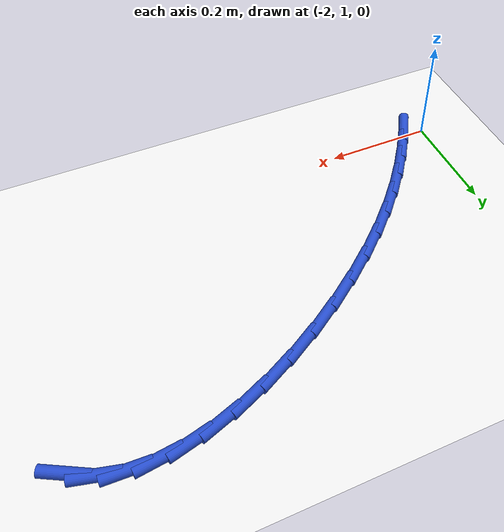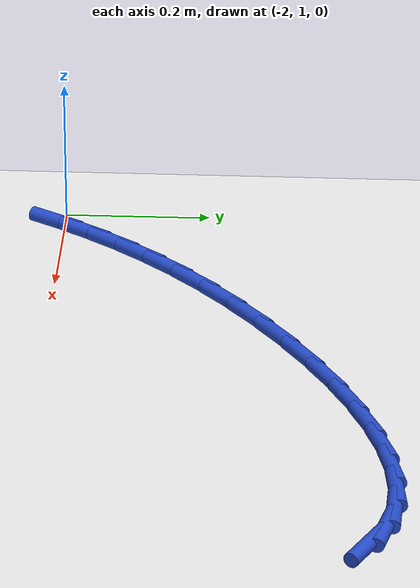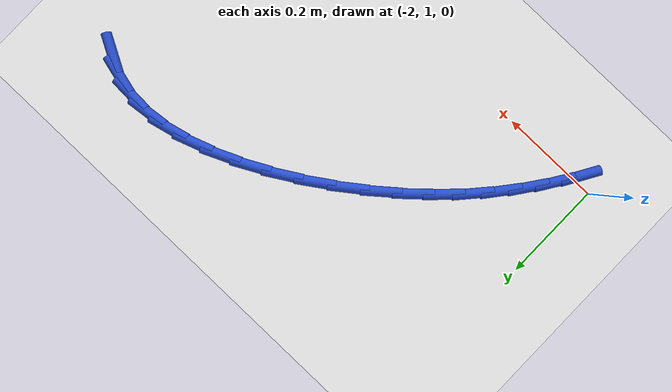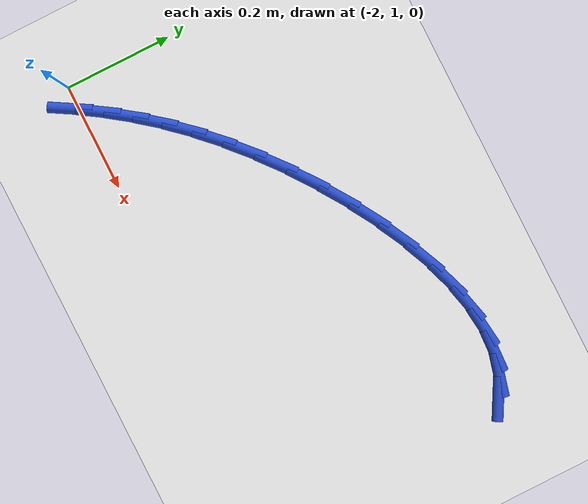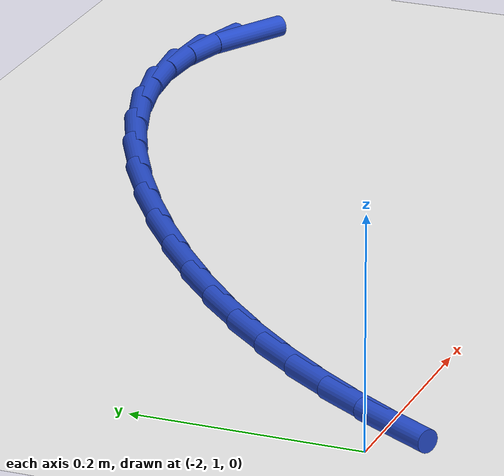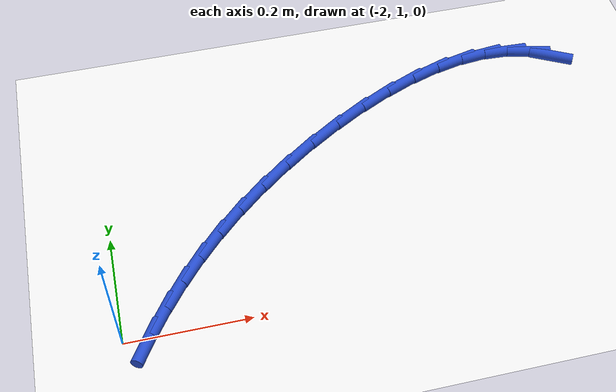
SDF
<sdf version="1.6">
 <world name="default">
  <model name="ground_plane">
   <static>1</static>
   <link name="link">
    <collision name="collision">
     <geometry><plane><normal>0 0 1</normal><size>100 100</size></plane></geometry>
     <surface><friction><ode><mu>100</mu><mu2>50</mu2></ode></friction></surface>
    </collision>
    <visual name="visual">
     <cast_shadows>0</cast_shadows>
     <geometry><plane><normal>0 0 1</normal><size>100 100</size></plane></geometry>
     <material>
      <script><uri>file://media/materials/scripts/gazebo.material</uri><name>Gazebo/WhiteGlow</name></script>
     </material>
    </visual>
   </link>
  </model>
  <model name="line">
   <link name="link_38">
    <pose>-1.1623889469960382 1.4319249500600415 0.01 0 1.57 -0.5040491336817796</pose>
    <collision name="collision">
     <geometry><cylinder><radius>0.01</radius><length>0.08</length></cylinder></geometry>
    </collision>
    <visual name="visual">
     <material>
      <script><name>Gazebo/Blue</name><uri>file://media/materials/scripts/gazebo.material</uri></script>
     </material>
     <geometry><cylinder><radius>0.01</radius><length>0.08</length></cylinder></geometry>
    </visual>
   </link>
   <link name="link_39">
    <pose>-1.199723672049727 1.4525177299784982 0.01 0 1.57 -0.2534060157428631</pose>
    <collision name="collision">
     <geometry><cylinder><radius>0.01</radius><length>0.08</length></cylinder></geometry>
    </collision>
    <visual name="visual">
     <material>
      <script><name>Gazebo/Blue</name><uri>file://media/materials/scripts/gazebo.material</uri></script>
     </material>
     <geometry><cylinder><radius>0.01</radius><length>0.08</length></cylinder></geometry>
    </visual>
   </link>
   <link name="link_40">
    <pose>-1.2420967896434874 1.463491230972106 0.01 0 1.57 -0.047241670514613025</pose>
    <collision name="collision">
     <geometry><cylinder><radius>0.01</radius><length>0.08</length></cylinder></geometry>
    </collision>
    <visual name="visual">
     <material>
      <script><name>Gazebo/Blue</name><uri>file://media/materials/scripts/gazebo.material</uri></script>
     </material>
     <geometry><cylinder><radius>0.01</radius><length>0.08</length></cylinder></geometry>
    </visual>
   </link>
   <link name="link_41">
    <pose>-1.2886680470303864 1.4656929731441437 0.01 0 1.57 0.11411441910101199</pose>
    <collision name="collision">
     <geometry><cylinder><radius>0.01</radius><length>0.08</length></cylinder></geometry>
    </collision>
    <visual name="visual">
     <material>
      <script><name>Gazebo/Blue</name><uri>file://media/materials/scripts/gazebo.material</uri></script>
     </material>
     <geometry><cylinder><radius>0.01</radius><length>0.08</length></cylinder></geometry>
    </visual>
   </link>
   <link name="link_42">
    <pose>-1.3385971914634907 1.4599704765978907 0.01 0 1.57 0.23936329155781605</pose>
    <collision name="collision">
     <geometry><cylinder><radius>0.01</radius><length>0.08</length></cylinder></geometry>
    </collision>
    <visual name="visual">
     <material>
      <script><name>Gazebo/Blue</name><uri>file://media/materials/scripts/gazebo.material</uri></script>
     </material>
     <geometry><cylinder><radius>0.01</radius><length>0.08</length></cylinder></geometry>
    </visual>
   </link>
   <link name="link_43">
    <pose>-1.391043970195867 1.4471712614366257 0.01 0 1.57 0.33807251238435</pose>
    <collision name="collision">
     <geometry><cylinder><radius>0.01</radius><length>0.08</length></cylinder></geometry>
    </collision>
    <visual name="visual">
     <material>
      <script><name>Gazebo/Blue</name><uri>file://media/materials/scripts/gazebo.material</uri></script>
     </material>
     <geometry><cylinder><radius>0.01</radius><length>0.08</length></cylinder></geometry>
    </visual>
   </link>
   <link name="link_44">
    <pose>-1.445168130480584 1.4281428477636284 0.01 0 1.57 0.41796376953160397</pose>
    <collision name="collision">
     <geometry><cylinder><radius>0.01</radius><length>0.08</length></cylinder></geometry>
    </collision>
    <visual name="visual">
     <material>
      <script><name>Gazebo/Blue</name><uri>file://media/materials/scripts/gazebo.material</uri></script>
     </material>
     <geometry><cylinder><radius>0.01</radius><length>0.08</length></cylinder></geometry>
    </visual>
   </link>
   <link name="link_45">
    <pose>-1.5001294195707089 1.4037327556821773 0.01 0 1.57 0.48474719495105406</pose>
    <collision name="collision">
     <geometry><cylinder><radius>0.01</radius><length>0.08</length></cylinder></geometry>
    </collision>
    <visual name="visual">
     <material>
      <script><name>Gazebo/Blue</name><uri>file://media/materials/scripts/gazebo.material</uri></script>
     </material>
     <geometry><cylinder><radius>0.01</radius><length>0.08</length></cylinder></geometry>
    </visual>
   </link>
   <link name="link_46">
    <pose>-1.5550875847193069 1.3747885052955513 0.01 0 1.57 0.5426180068361647</pose>
    <collision name="collision">
     <geometry><cylinder><radius>0.01</radius><length>0.08</length></cylinder></geometry>
    </collision>
    <visual name="visual">
     <material>
      <script><name>Gazebo/Blue</name><uri>file://media/materials/scripts/gazebo.material</uri></script>
     </material>
     <geometry><cylinder><radius>0.01</radius><length>0.08</length></cylinder></geometry>
    </visual>
   </link>
   <link name="link_47">
    <pose>-1.6092023731794471 1.3421576167070306 0.01 0 1.57 0.5947837218043405</pose>
    <collision name="collision">
     <geometry><cylinder><radius>0.01</radius><length>0.08</length></cylinder></geometry>
    </collision>
    <visual name="visual">
     <material>
      <script><name>Gazebo/Blue</name><uri>file://media/materials/scripts/gazebo.material</uri></script>
     </material>
     <geometry><cylinder><radius>0.01</radius><length>0.08</length></cylinder></geometry>
    </visual>
   </link>
   <link name="link_48">
    <pose>-1.6616335322041962 1.3066876100198939 0.01 0 1.57 0.6439004121174262</pose>
    <collision name="collision">
     <geometry><cylinder><radius>0.01</radius><length>0.08</length></cylinder></geometry>
    </collision>
    <visual name="visual">
     <material>
      <script><name>Gazebo/Blue</name><uri>file://media/materials/scripts/gazebo.material</uri></script>
     </material>
     <geometry><cylinder><radius>0.01</radius><length>0.08</length></cylinder></geometry>
    </visual>
   </link>
   <link name="link_49">
    <pose>-1.7115408090466215 1.2692260053374194 0.01 0 1.57 0.6924481186817071</pose>
    <collision name="collision">
     <geometry><cylinder><radius>0.01</radius><length>0.08</length></cylinder></geometry>
    </collision>
    <visual name="visual">
     <material>
      <script><name>Gazebo/Blue</name><uri>file://media/materials/scripts/gazebo.material</uri></script>
     </material>
     <geometry><cylinder><radius>0.01</radius><length>0.08</length></cylinder></geometry>
    </visual>
   </link>
   <link name="link_50">
    <pose>-1.7580839509597905 1.230620322762887 0.01 0 1.57 0.7428412917880801</pose>
    <collision name="collision">
     <geometry><cylinder><radius>0.01</radius><length>0.08</length></cylinder></geometry>
    </collision>
    <visual name="visual">
     <material>
      <script><name>Gazebo/Blue</name><uri>file://media/materials/scripts/gazebo.material</uri></script>
     </material>
     <geometry><cylinder><radius>0.01</radius><length>0.08</length></cylinder></geometry>
    </visual>
   </link>
   <link name="link_51">
    <pose>-1.8005897082279445 1.1915867218703458 0.01 0 1.57 0.7953144953668434</pose>
    <collision name="collision">
     <geometry><cylinder><radius>0.01</radius><length>0.08</length></cylinder></geometry>
    </collision>
    <visual name="visual">
     <material>
      <script><name>Gazebo/Blue</name><uri>file://media/materials/scripts/gazebo.material</uri></script>
     </material>
     <geometry><cylinder><radius>0.01</radius><length>0.08</length></cylinder></geometry>
    </visual>
   </link>
   <link name="link_52">
    <pose>-1.839212079004511 1.1521906691468031 0.01 0 1.57 0.8485511496075425</pose>
    <collision name="collision">
     <geometry><cylinder><radius>0.01</radius><length>0.08</length></cylinder></geometry>
    </collision>
    <visual name="visual">
     <material>
      <script><name>Gazebo/Blue</name><uri>file://media/materials/scripts/gazebo.material</uri></script>
     </material>
     <geometry><cylinder><radius>0.01</radius><length>0.08</length></cylinder></geometry>
    </visual>
   </link>
   <link name="link_53">
    <pose>-1.8743607388020056 1.1122965214768503 0.01 0 1.57 0.9011562233517446</pose>
    <collision name="collision">
     <geometry><cylinder><radius>0.01</radius><length>0.08</length></cylinder></geometry>
    </collision>
    <visual name="visual">
     <material>
      <script><name>Gazebo/Blue</name><uri>file://media/materials/scripts/gazebo.material</uri></script>
     </material>
     <geometry><cylinder><radius>0.01</radius><length>0.08</length></cylinder></geometry>
    </visual>
   </link>
   <link name="link_54">
    <pose>-1.9064454378836169 1.071768576948012 0.01 0 1.57 0.951632944414689</pose>
    <collision name="collision">
     <geometry><cylinder><radius>0.01</radius><length>0.08</length></cylinder></geometry>
    </collision>
    <visual name="visual">
     <material>
      <script><name>Gazebo/Blue</name><uri>file://media/materials/scripts/gazebo.material</uri></script>
     </material>
     <geometry><cylinder><radius>0.01</radius><length>0.08</length></cylinder></geometry>
    </visual>
   </link>
   <link name="link_55">
    <pose>-1.9358759265125334 1.0304711336478165 0.01 0 1.57 0.9985245662462175</pose>
    <collision name="collision">
     <geometry><cylinder><radius>0.01</radius><length>0.08</length></cylinder></geometry>
    </collision>
    <visual name="visual">
     <material>
      <script><name>Gazebo/Blue</name><uri>file://media/materials/scripts/gazebo.material</uri></script>
     </material>
     <geometry><cylinder><radius>0.01</radius><length>0.08</length></cylinder></geometry>
    </visual>
   </link>
   <link name="link_56">
    <pose>-1.9630619549519448 0.9882684896637889 0.01 0 1.57 1.0405521005994913</pose>
    <collision name="collision">
     <geometry><cylinder><radius>0.01</radius><length>0.08</length></cylinder></geometry>
    </collision>
    <visual name="visual">
     <material>
      <script><name>Gazebo/Blue</name><uri>file://media/materials/scripts/gazebo.material</uri></script>
     </material>
     <geometry><cylinder><radius>0.01</radius><length>0.08</length></cylinder></geometry>
    </visual>
   </link>
  </model>
 </world>
</sdf>
